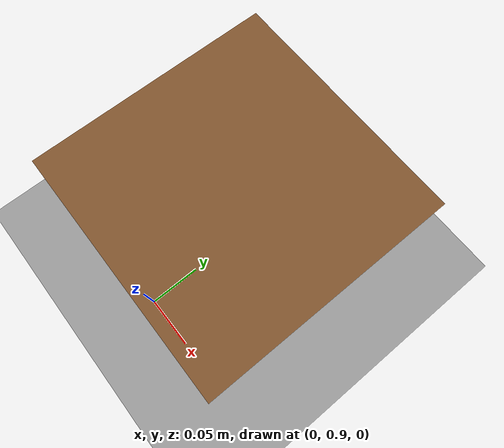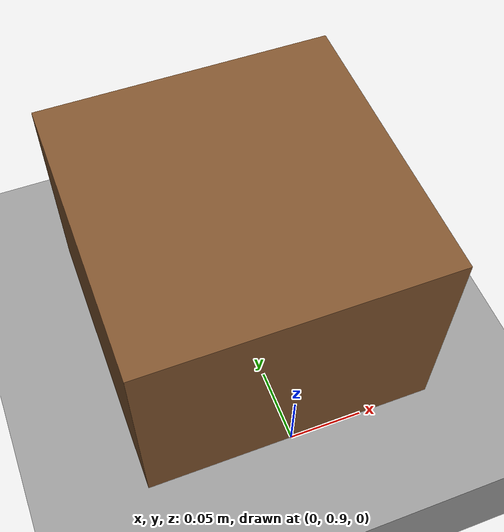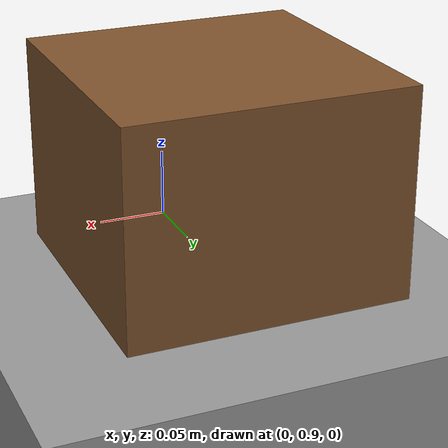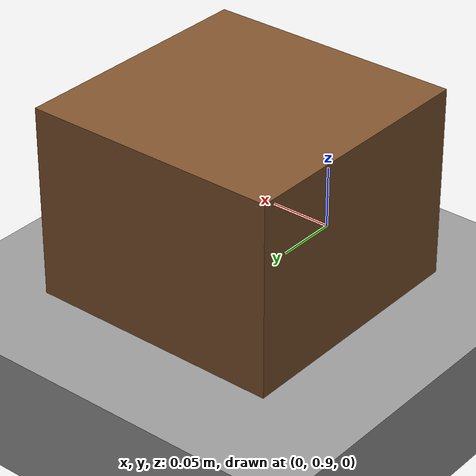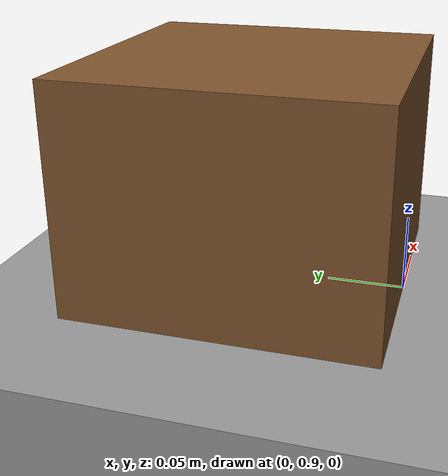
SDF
<?xml version="1.0"?>
<sdf version="1.6">
  <world name="default">
    <!-- Gray Ground -->
    <model name="gray_ground">
      <static>true</static>
      <link name="ground_link">
        <visual name="ground_visual">
          <geometry>
            <box>
              <size>10 10 0.1</size> <!-- Large floor area -->
            </box>
          </geometry>
          <material>
            <script>
              <uri>file://media/materials/scripts/gazebo.material</uri>
              <name>Gazebo/Gray</name> <!-- Gray color -->
            </script>
          </material>
        </visual>
        <collision name="ground_collision">
          <geometry>
            <box>
              <size>10 10 0.1</size>
            </box>
          </geometry>
        </collision>
      </link>
      <!-- Position the ground slightly below z=0 so its top is at ground level -->
      <pose>0 0 -0.05 0 0 0</pose>
    </model>

    <!-- Small Brown Object -->
    <model name="small_brown_object">
      <static>true</static>
      <link name="object_link">
        <visual name="object_visual">
          <geometry>
            <box>
              <size>0.2 0.2 0.2</size> <!-- Small cube -->
            </box>
          </geometry>
          <material>
            <script>
              <uri>file://media/materials/scripts/gazebo.material</uri>
              <name>Gazebo/Brown</name> <!-- Brown color -->
            </script>
          </material>
        </visual>
        <collision name="object_collision">
          <geometry>
            <box>
              <size>0.2 0.2 0.2</size>
            </box>
          </geometry>
        </collision>
      </link>
      <!-- Position the object on top of the ground -->
      <pose>0 1 0.05 0 0 0</pose>
    </model>

  </world>
</sdf>
